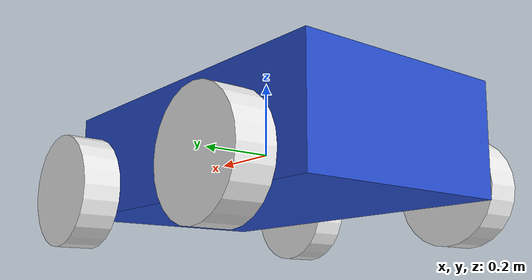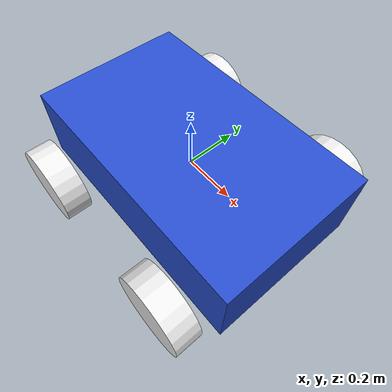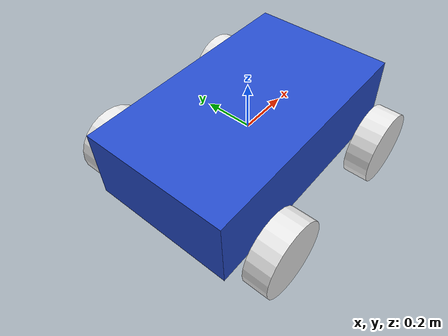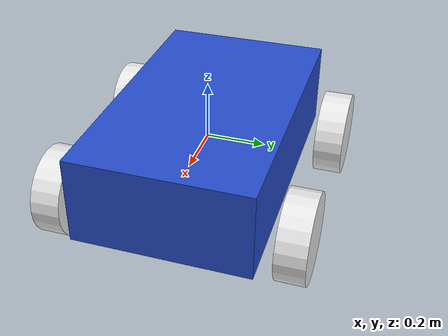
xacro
<?xml version="1.0"?>
<robot name="mobile_robot" xmlns:xacro="http://www.ros.org/wiki/xacro">
  <xacro:property name="body_length" value="1"/>
  <xacro:property name="body_width" value="0.6"/>
  <xacro:property name="body_height" value="0.3"/>

  <xacro:property name="radius" value="0.15"/>
  <xacro:property name="wideness" value="0.1"/>
  <xacro:property name="z_dim" value="-0.1"/>

  <xacro:property name="wheel_density" value="2710.0"/>
  <xacro:property name="body_density" value="2710.0"/>

  <xacro:property name="pi_const" value="3.14159265"/>

  <xacro:property name="body_mass" value="${body_density * body_length * body_width * body_height}"/>
  <xacro:property name="wheel_mass" value="${wheel_density * pi * radius * radius * wideness}"/>

  <xacro:property name="Iz_wheel" value="${0.5 * wheel_mass * radius * radius}"/>
  <xacro:property name="I_wheel" value="${(1.0/12.0) * wheel_mass * (3.0 * radius * radius + wideness * wideness)}"/>

  <xacro:macro name="inertia_wheel">
    <inertial>
      <origin rpy="0 0 0" xyz="0 0 0"/>
      <mass value="${wheel_mass}"/>
      <inertia ixx="${I_wheel}" ixy="0.0" ixz="0.0"
               iyy="${I_wheel}" iyz="0.0"
               izz="${Iz_wheel}"/>
    </inertial>
  </xacro:macro>

  <xacro:include filename="$(find mobile_robot)/model/robot.gazebo"/>

  <link name="dummy"></link>

  <joint name="dummy_joint" type="fixed">
    <parent link="dummy"/>
    <child link="base_link"/>
  </joint>

  <link name="base_link">
    <visual>
      <origin xyz="0 0 0" rpy="0 0 0"/>
      <geometry>
        <box size="${body_length} ${body_width} ${body_height}"/>
      </geometry>
    </visual>

    <collision>
      <geometry>
        <box size="${body_length} ${body_width} ${body_height}"/>
      </geometry>
      <origin xyz="0 0 0" rpy="0 0 0"/>
    </collision>

    <inertial>
      <mass value="${body_mass}"/>
      <inertia ixx="${(1.0/12.0) * body_mass * (body_width * body_width + body_height * body_height)}"
               ixy="0.0"
               ixz="0.0"
               iyy="${(1.0/12.0) * body_mass * (body_length * body_length + body_height * body_height)}"
               iyz="0.0"
               izz="${(1.0/12.0) * body_mass * (body_length * body_length + body_width * body_width)}"/>
    </inertial>
  </link>

  <!-- ###########    Wheel Start here         #####-->

  <!-- Left Front wheel  -->
  <link name="wheel_fl">
    <visual>
      <origin xyz="0 0 0" rpy="1.570795 0 0"/>
      <geometry>
        <cylinder radius="${radius}" length="${wideness}"/>
      </geometry>
    </visual>

    <collision>
      <origin xyz="0 0 0" rpy="1.570795 0 0"/>
      <geometry>
        <cylinder radius="${radius}" length="${wideness}"/>
      </geometry>
    </collision>

    <xacro:inertia_wheel />
  </link>

  <joint name="wheel_fl_joint" type="continuous">
    <parent link="base_link"/>
    <child link="wheel_fl"/>
    <origin xyz="${-body_length / 2 + 1.2 * radius} ${-body_width / 2 - wideness} ${z_dim}" rpy="0 0 0"/>
    <axis xyz="0 1 0"/>
    <dynamics damping="1.0" friction="1.0"/>
    <limit effort="1000" velocity="1000"/>
  </joint>

  <!-- Front Right Wheel -->
  <link name="wheel_fr">
    <visual>
      <origin xyz="0 0 0" rpy="1.570795 0 0"/>
      <geometry>
        <cylinder radius="${radius}" length="${wideness}"/>
      </geometry>
    </visual>

    <collision>
      <origin xyz="0 0 0" rpy="1.570795 0 0"/>
      <geometry>
        <cylinder radius="${radius}" length="${wideness}"/>
      </geometry>
    </collision>

    <xacro:inertia_wheel />
  </link>

  <joint name="wheel_fr_joint" type="continuous">
    <parent link="base_link"/>
    <child link="wheel_fr"/>
    <origin xyz="${-body_length / 2 + 1.2 * radius} ${body_width / 2 + wideness} ${z_dim}" rpy="0 0 0"/>
    <axis xyz="0 1 0"/>
    <dynamics damping="1.0" friction="1.0"/>
    <limit effort="1000" velocity="1000"/>
  </joint>

  <!-- Rear Left Wheel -->
  <link name="wheel_rl">
    <visual>
      <origin xyz="0 0 0" rpy="1.570795 0 0"/>
      <geometry>
        <cylinder radius="${radius}" length="${wideness}"/>
      </geometry>
    </visual>

    <collision>
      <origin xyz="0 0 0" rpy="1.570795 0 0"/>
      <geometry>
        <cylinder radius="${radius}" length="${wideness}"/>
      </geometry>
    </collision>

    <xacro:inertia_wheel />
  </link>

  <joint name="wheel_rl_joint" type="continuous">
    <parent link="base_link"/>
    <child link="wheel_rl"/>
    <origin xyz="${body_length / 2 - 1.2 * radius} ${-body_width / 2 - wideness} ${z_dim}" rpy="0 0 0"/>
    <axis xyz="0 1 0"/>
    <dynamics damping="1.0" friction="1.0"/>
    <limit effort="1000" velocity="1000"/>
  </joint>

  <!-- Rear Right Wheel -->
  <link name="wheel_rr">
    <visual>
      <origin xyz="0 0 0" rpy="1.570795 0 0"/>
      <geometry>
        <cylinder radius="${radius}" length="${wideness}"/>
      </geometry>
    </visual>

    <collision>
      <origin xyz="0 0 0" rpy="1.570795 0 0"/>
      <geometry>
        <cylinder radius="${radius}" length="${wideness}"/>
      </geometry>
    </collision>

    <xacro:inertia_wheel />
  </link>

  <joint name="wheel_rr_joint" type="continuous">
    <parent link="base_link"/>
    <child link="wheel_rr"/>
    <origin xyz="${body_length / 2 - 1.2 * radius} ${body_width / 2 + wideness} ${z_dim}" rpy="0 0 0"/>
    <axis xyz="0 1 0"/>
    <dynamics damping="1.0" friction="1.0"/>
    <limit effort="1000" velocity="1000"/>
  </joint>

</robot>
